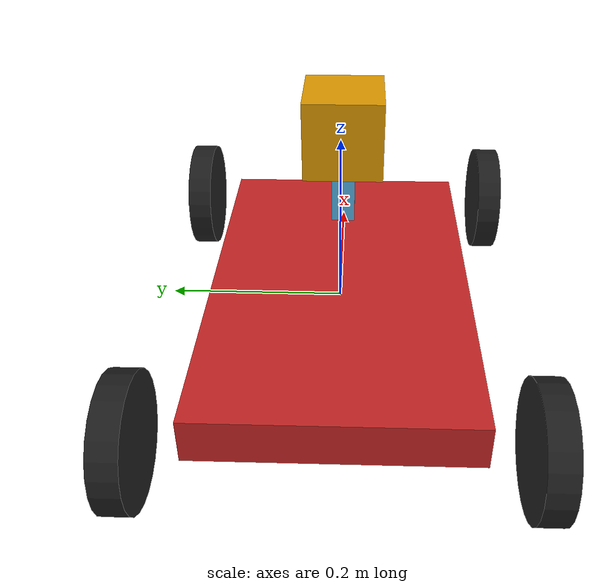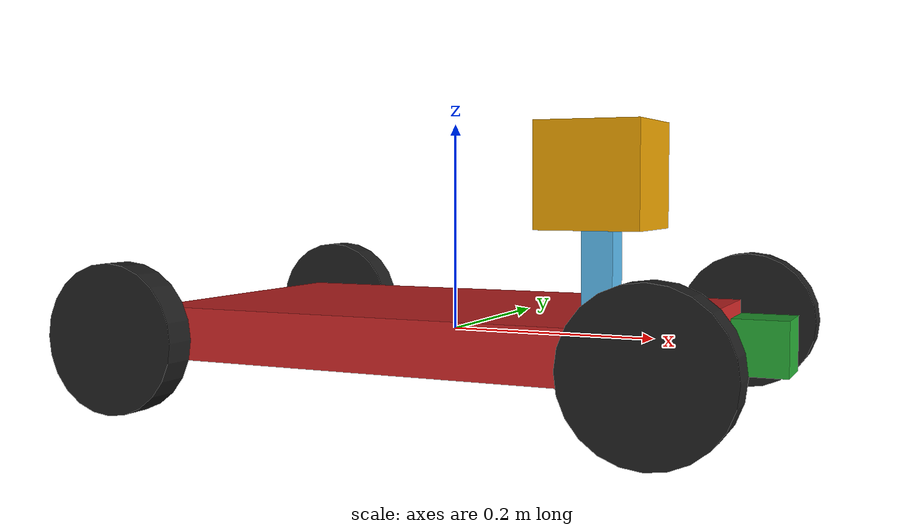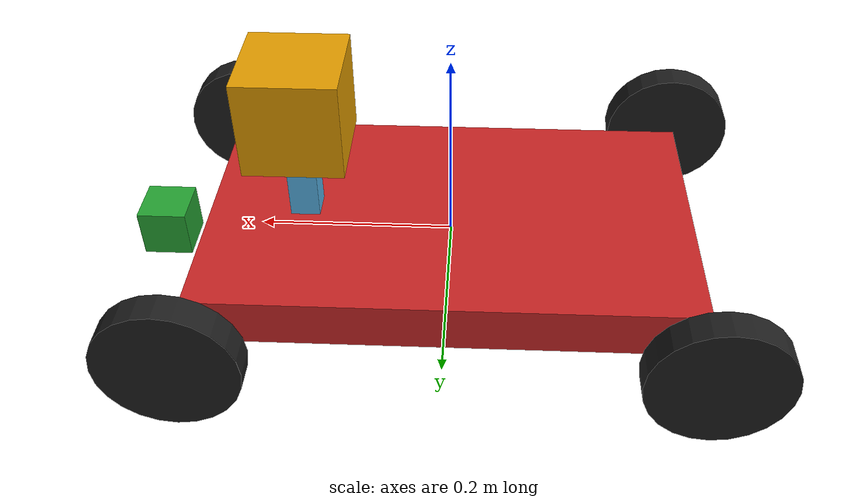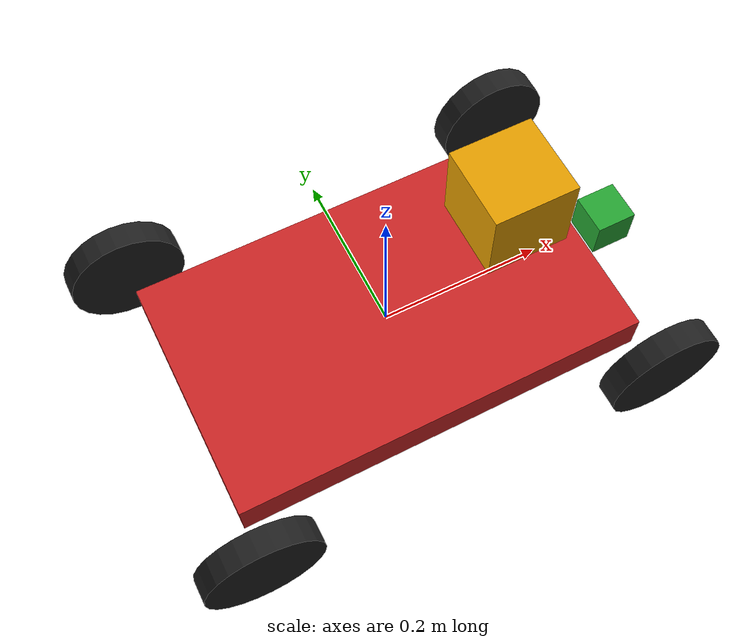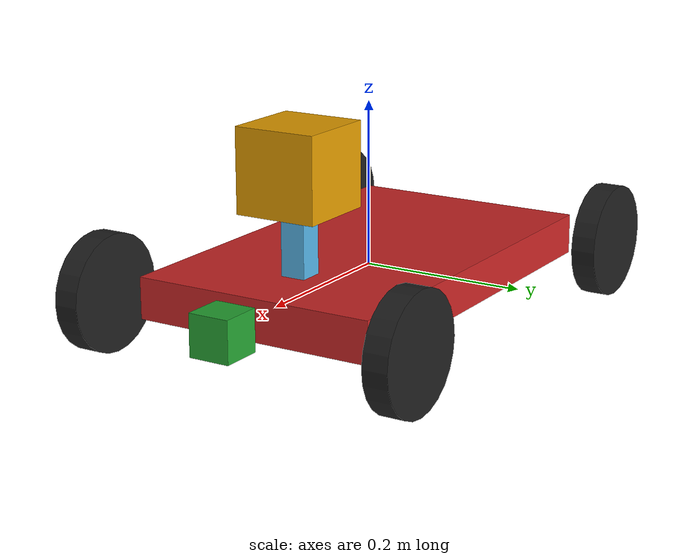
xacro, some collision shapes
<?xml version='1.0'?>

<robot name="my_robot" xmlns:xacro="http://www.ros.org/wiki/xacro">
<xacro:include filename="$(find my_robot)/urdf/my_robot.gazebo" />
  <link name="robot_footprint"></link>

  <joint name="robot_footprint_joint" type="fixed">
    <origin xyz="0 0 0" rpy="0 0 0" />
    <parent link="robot_footprint"/>
    <child link="chassis" />
  </joint>

  <link name='chassis'>
    <pose>0 0 0.1 0 0 0</pose>

    <inertial>
      <mass value="10.0"/>
      <origin xyz="0.0 0 0" rpy=" 0 0 0"/>
      <inertia
          ixx="0.1" ixy="0" ixz="0"
          iyy="0.1" iyz="0"
          izz="0.1"
      />
    </inertial>

    <collision name='collision'>
      <origin xyz="0 0 0" rpy=" 0 0 0"/>
      <geometry>
        <box size=".5 .3 .05"/>
      </geometry>
    </collision>

    <visual name='chassis_visual'>
      <origin xyz="0 0 0" rpy=" 0 0 0"/>
      <geometry>
        <box size=".5 .3 .05"/>
      </geometry>
    </visual>

  </link>
  <link name="left_wheel_back">

	<inertial>
	  <origin xyz="0 0 0" rpy=" 0 1.5707 1.5707"/>
	  <mass value="2"/>
	  <inertia
		  ixx="0.1" ixy="0" ixz="0"
    		  iyy="0.1" iyz="0"
    		  izz="0.1"/>
	</inertial>

	<collision>
	  <origin xyz="0 0 0" rpy=" 0 1.5707 1.5707"/>
	  <geometry>
		  <cylinder radius="0.07" length="0.03"/>
	  </geometry>

	</collision>

	<visual>
	  <origin xyz="0 0 0" rpy=" 0 1.5707 1.5707"/>
	  <geometry>
		  <cylinder radius="0.07" length="0.03"/>
	  </geometry>

	</visual>
  </link>

  <link name="right_wheel_back">
	<inertial>
	  <origin xyz="0 0 0" rpy=" 0 1.5707 1.5707"/>
	  <mass value="2"/>
	  <inertia
		  ixx="0.1" ixy="0" ixz="0"
    		  iyy="0.1" iyz="0"
    		  izz="0.1"/>
	</inertial>

	<collision>
	  <origin xyz="0 0 0" rpy=" 0 1.5707 1.5707"/>
	  <geometry>
		  <cylinder radius="0.07" length="0.03"/>
	  </geometry>

	</collision>

	<visual>
	  <origin xyz="0 0 0" rpy=" 0 1.5707 1.5707"/>
	  <geometry>
		  <cylinder radius="0.07" length="0.03"/>
	  </geometry>

	</visual>
  </link>

    <link name="left_wheel_front">

	<inertial>
	  <origin xyz="0 0 0" rpy=" 0 1.5707 1.5707"/>
	  <mass value="2"/>
	  <inertia
		  ixx="0.1" ixy="0" ixz="0"
    		  iyy="0.1" iyz="0"
    		  izz="0.1"/>
	</inertial>

	<collision>
	  <origin xyz="0 0 0" rpy=" 0 1.5707 1.5707"/>
	  <geometry>
		  <cylinder radius="0.07" length="0.03"/>
	  </geometry>

	</collision>

	<visual>
	  <origin xyz="0 0 0" rpy=" 0 1.5707 1.5707"/>
	  <geometry>
		  <cylinder radius="0.07" length="0.03"/>
	  </geometry>

	</visual>
  </link>

  <link name="right_wheel_front">
	<inertial>
	  <origin xyz="0 0 0" rpy=" 0 1.5707 1.5707"/>
	  <mass value="2"/>
	  <inertia
		  ixx="0.1" ixy="0" ixz="0"
    		  iyy="0.1" iyz="0"
    		  izz="0.1"/>
	</inertial>

	<collision>
	  <origin xyz="0 0 0" rpy=" 0 1.5707 1.5707"/>
	  <geometry>
		  <cylinder radius="0.07" length="0.03"/>
	  </geometry>

	</collision>

	<visual>
	  <origin xyz="0 0 0" rpy=" 0 1.5707 1.5707"/>
	  <geometry>
		  <cylinder radius="0.07" length="0.03"/>
	  </geometry>

	</visual>
  </link>
  <link name="camera">
  	<inertial>
  	  <origin xyz="0 0 0" rpy=" 0 0 0"/>
	  <mass value="0.1"/>
	  <inertia
		  ixx="1e-6" ixy="0" ixz="0"
    		  iyy="1e-6" iyz="0"
    		  izz="1e-6"/>
  	</inertial>

  	<visual>
  	  <origin xyz="0 0 0" rpy=" 0 0 0"/>
  	  <geometry>
  	  	<box size="0.05 0.05 0.05"/>
  	  </geometry>

  	</visual>

  	<collision>
  	  <origin xyz="0 0 0" rpy=" 0 0 0"/>
  	  <geometry>
  	  	<box size="0.05 0.05 0.05"/>
  	  </geometry>
  	</collision>

  	<box_inertia sizeX="0.05" sizeY="0.05" sizeZ="0.05" mass="0.1">
  	  <origin xyz="0 0 0" rpy=" 0 0 0"/>
  	</box_inertia>
  </link>

 <joint name="camera_optical_joint" type="fixed">
    <origin xyz="0 0 0" rpy="-1.5707 0 -1.5707"/>
    <parent link="camera"/>
    <child link="camera_link_optical"/>
  </joint>

  <link name="camera_link_optical">
  </link>

  <link name="hokuyo">
        <inertial>
  	  <origin xyz="0 0 0" rpy=" 0 0 0"/>
	  <mass value="1e-5"/>
	  <inertia
		  ixx="1e-6" ixy="0" ixz="0"
    		  iyy="1e-6" iyz="0"
    		  izz="1e-6"/>
  	</inertial>
  	<visual>
  	  <origin xyz="0 0 0" rpy=" 0 0 0"/>
  	  <geometry>
  	  	<mesh filename="package://my_robot/meshes/hokuyo.dae"/>
  	  </geometry>
  	</visual>

  	<collision>
  	  <origin xyz="0 0 0" rpy=" 0 0 0"/>
  	  <geometry>
  	  	<box size="0.1 0.1 0.1"/>
  	  </geometry>
  	</collision>
  </link>
  <link name="lidar_support">
  	<inertial>
  	  <origin xyz="0 0 0" rpy=" 0 0 0"/>
	  <mass value="0.1"/>
	  <inertia
		  ixx="1e-6" ixy="0" ixz="0"
    		  iyy="1e-6" iyz="0"
    		  izz="1e-6"/>
  	</inertial>

  	<visual>
  	  <origin xyz="0 0 0" rpy=" 0 0 0"/>
  	  <geometry>
  	  	<box size="0.03 0.03 0.10"/>
  	  </geometry>

  	</visual>

  	<collision>
  	  <origin xyz="0 0 0" rpy=" 0 0 0"/>
  	  <geometry>
  	  	<box size="0.03 0.03 0.10"/>
  	  </geometry>
  	</collision>

  </link>

  <joint type="continuous" name="left_wheel_back_hinge">
    <origin xyz="-0.25 0.2 0.0" rpy="0 0 0"/>
    <child link="left_wheel_back"/>
    <parent link="chassis"/>
    <axis xyz="0 1 0" rpy="0 0 0"/>
    <limit effort="10000" velocity="1000"/>
    <dynamics damping="1.0" friction="1.0"/>
  </joint>

  <joint type="continuous" name="right_wheel_back_hinge">
    <origin xyz="-0.25 -0.2 0.0" rpy="0 0 0"/>
    <child link="right_wheel_back"/>
    <parent link="chassis"/>
    <axis xyz="0 1 0" rpy="0 0 0"/>
    <limit effort="10000" velocity="1000"/>
    <dynamics damping="1.0" friction="1.0"/>
  </joint>

  <joint type="continuous" name="left_wheel_front_hinge">
    <origin xyz="0.25 0.2 0.0" rpy="0 0 0"/>
    <child link="left_wheel_front"/>
    <parent link="chassis"/>
    <axis xyz="0 1 0" rpy="0 0 0"/>
    <limit effort="10000" velocity="1000"/>
    <dynamics damping="1.0" friction="1.0"/>
  </joint>

  <joint type="continuous" name="right_wheel_front_hinge">
    <origin xyz="0.25 -0.2 0.0" rpy="0 0 0"/>
    <child link="right_wheel_front"/>
    <parent link="chassis"/>
    <axis xyz="0 1 0" rpy="0 0 0"/>
    <limit effort="10000" velocity="1000"/>
    <dynamics damping="1.0" friction="1.0"/>
  </joint>

  <joint type="fixed" name="camera_joint">
    <origin xyz="0.3 0 0" rpy="0 0 0"/>
    <child link="camera"/>
    <parent link="chassis"/>
    <axis xyz="0 1 0" rpy="0 0 0"/>
  </joint>

  <joint type="fixed" name="support_joint">
    <origin xyz="0.15 0 0.05" rpy="0 0 0"/>
    <child link="lidar_support"/>
    <parent link="chassis"/>
    <axis xyz="0 1 0" rpy="0 0 0"/>
  </joint>

  <joint type="fixed" name="hokuyo_joint">
    <origin xyz="0 0 0.10" rpy="0 0 0"/>
    <child link="hokuyo"/>
    <parent link="lidar_support"/>
    <axis xyz="0 1 0" rpy="0 0 0"/>
  </joint>
 <gazebo reference="left_wheel_back">
    <material>Gazebo/Black</material>
 </gazebo>

 <gazebo reference="right_wheel_back">
    <material>Gazebo/Black</material>
 </gazebo>

  <gazebo reference="left_wheel_front">
    <material>Gazebo/Black</material>
 </gazebo>

 <gazebo reference="right_wheel_front">
    <material>Gazebo/Black</material>
 </gazebo>

 <gazebo reference="chassis">
    <material>Gazebo/Red</material>
 </gazebo>

 <gazebo reference="camera">
    <material>Gazebo/Green</material>
 </gazebo>
</robot>
